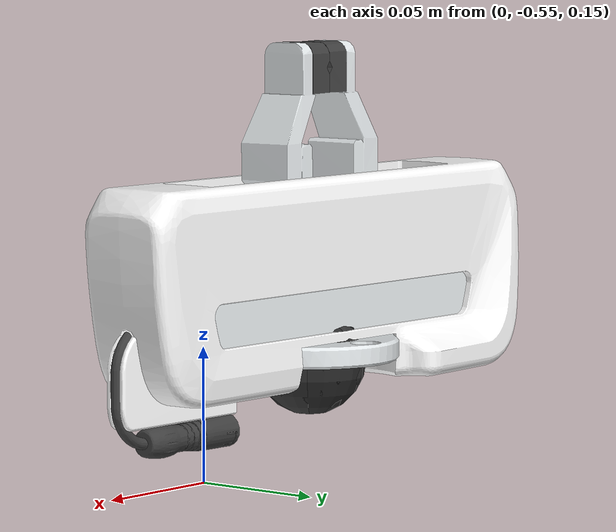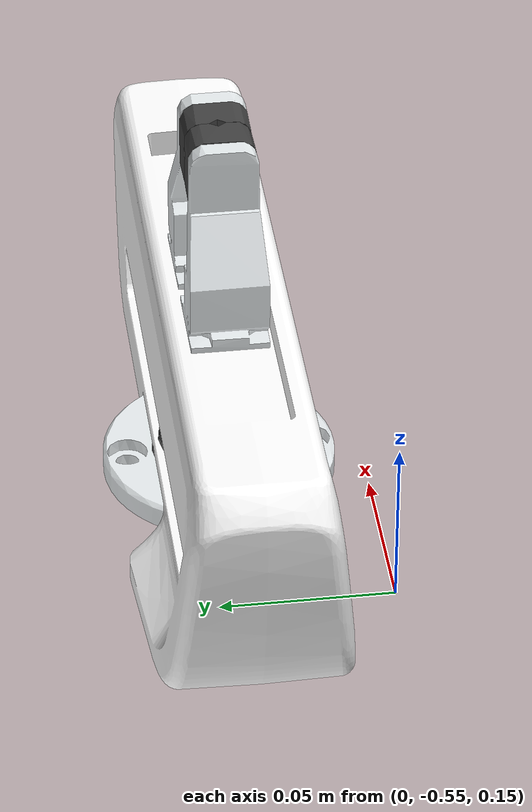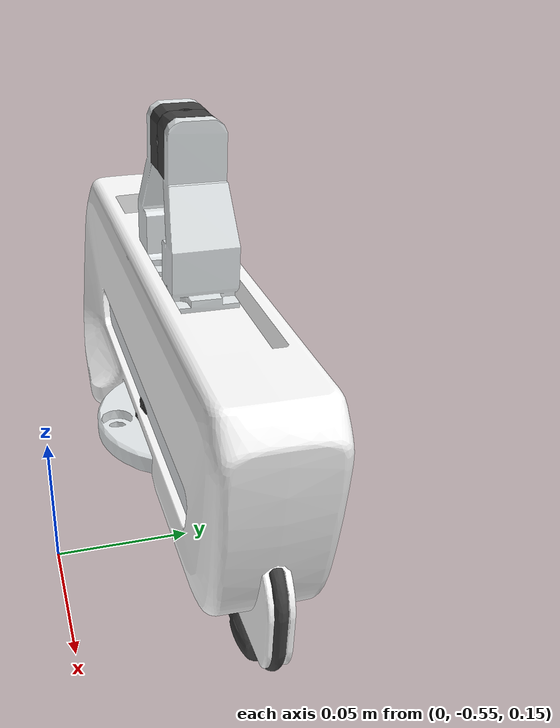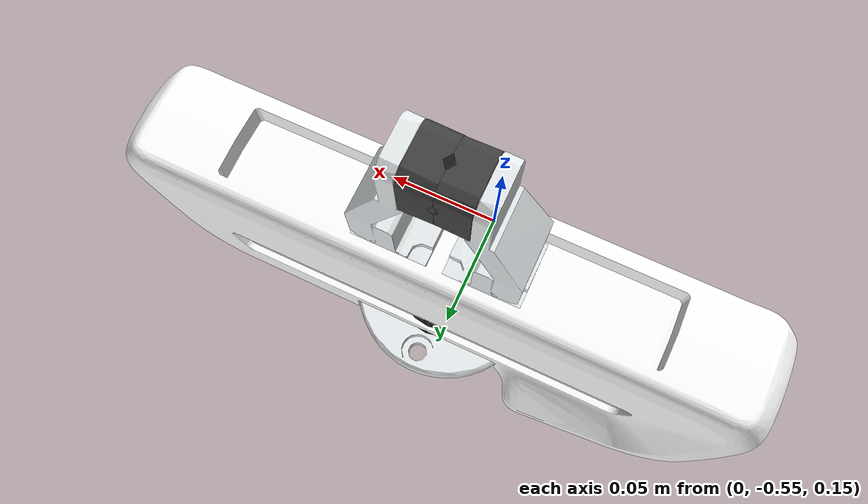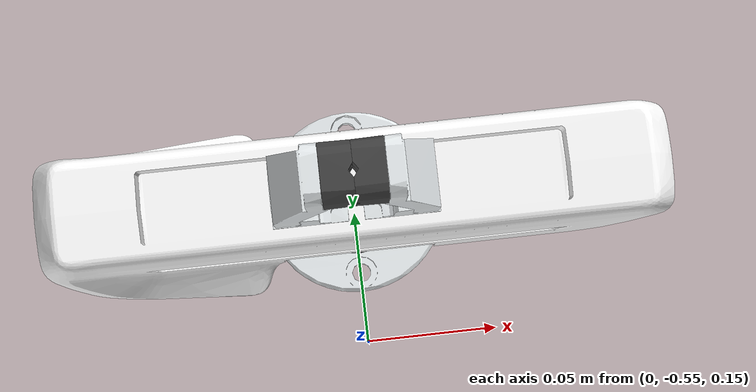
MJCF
<mujoco model="panda">
  <compiler angle="radian" autolimits="true"/>

  <option integrator="implicitfast"/>

  <default>
    <default class="panda">
      <material specular="0.5" shininess="0.25"/>
      <default class="finger">
        <joint axis="0 1 0" type="slide" range="0 0.04" armature="0.2" damping="2"/>
      </default>
      <default class="visual">
        <geom type="mesh" contype="0" conaffinity="0" group="2"/>
      </default>
      <default class="collision">
        <geom type="mesh" group="3" condim="6" friction="1 0.02 0.0005" solimp="0.95 0.99 0.001 0.5 2" solref=".005 1"/>
        <default class="fingertip_pad_collision_1">
          <geom type="box" size="0.0085 0.004 0.0085" pos="0 0.0055 0.0445"/>
        </default>
        <default class="fingertip_pad_collision_2">
          <geom type="box" size="0.003 0.002 0.003" pos="0.0055 0.002 0.05"/>
        </default>
        <default class="fingertip_pad_collision_3">
          <geom type="box" size="0.003 0.002 0.003" pos="-0.0055 0.002 0.05"/>
        </default>
        <default class="fingertip_pad_collision_4">
          <geom type="box" size="0.003 0.002 0.0035" pos="0.0055 0.002 0.0395"/>
        </default>
        <default class="fingertip_pad_collision_5">
          <geom type="box" size="0.003 0.002 0.0035" pos="-0.0055 0.002 0.0395"/>
        </default>
      </default>
    </default>
  </default>

  <asset>
    <material class="panda" name="white" rgba="1 1 1 1"/>
    <material class="panda" name="off_white" rgba="0.901961 0.921569 0.929412 1"/>
    <material class="panda" name="panda_black" rgba="0.25 0.25 0.25 1"/>
    <material class="panda" name="green" rgba="0 1 0 1"/>
    <material class="panda" name="light_blue" rgba="0.039216 0.541176 0.780392 1"/>

    <!-- Collision meshes -->
    <mesh name="hand_c" file="assets/hand.stl"/>

    <!-- Visual meshes -->
    <mesh file="assets/hand_0.obj"/>
    <mesh file="assets/hand_1.obj"/>
    <mesh file="assets/hand_2.obj"/>
    <mesh file="assets/hand_3.obj"/>
    <mesh file="assets/hand_4.obj"/>
    <mesh file="assets/finger_0.obj"/>
    <mesh file="assets/finger_1.obj"/>
  </asset>

  <worldbody>

    <body name="floating_1" mocap="true" pos="0 -0.5 0.2" euler="0 0 0">
      <geom name="floating_1" type="sphere" group="1" size="0.02" rgba="0.1 0.1 0.1 0.2" class="visual"/>
      <site name="mocap" pos="0 0 0" euler="0 0 0" size="0.01" rgba="0.1 0.1 0.1 0.2"/>
    </body>

    <body name="floating_2" pos="0 -0.5 0.2" euler="0 0 1.570795">
      <geom name="floating_2" type="sphere" group="1" size="0.02" rgba="0.2 0.2 0.2 1" class="visual"/>
      <freejoint name="floating_2"/>

      <body name="hand" pos="0 0 0" euler="0 0 0">
        <inertial mass="0.73" pos="-0.01 0 0.03" diaginertia="0.001 0.0025 0.0017"/>
        <geom mesh="hand_0" material="off_white" class="visual"/>
        <geom mesh="hand_1" material="panda_black" class="visual"/>
        <geom mesh="hand_2" material="panda_black" class="visual"/>
        <geom mesh="hand_3" material="white" class="visual"/>
        <geom mesh="hand_4" material="off_white" class="visual"/>
        <geom mesh="hand_c" class="collision"/>
        <body name="left_finger" pos="0 0 0.0584">
          <inertial mass="0.015" pos="0 0 0" diaginertia="2.375e-6 2.375e-6 7.5e-7"/>
          <joint name="finger_joint1" class="finger"/>
          <geom mesh="finger_0" material="off_white" class="visual"/>
          <geom mesh="finger_1" material="panda_black" class="visual"/>
          <geom mesh="finger_0" class="collision"/>
          <geom class="fingertip_pad_collision_1"/>
          <geom class="fingertip_pad_collision_2"/>
          <geom class="fingertip_pad_collision_3"/>
          <geom class="fingertip_pad_collision_4"/>
          <geom class="fingertip_pad_collision_5"/>
        </body>
        <body name="right_finger" pos="0 0 0.0584" quat="0 0 0 1">
          <inertial mass="0.015" pos="0 0 0" diaginertia="2.375e-6 2.375e-6 7.5e-7"/>
          <joint name="finger_joint2" class="finger"/>
          <geom mesh="finger_0" material="off_white" class="visual"/>
          <geom mesh="finger_1" material="panda_black" class="visual"/>
          <geom mesh="finger_0" class="collision"/>
          <geom class="fingertip_pad_collision_1"/>
          <geom class="fingertip_pad_collision_2"/>
          <geom class="fingertip_pad_collision_3"/>
          <geom class="fingertip_pad_collision_4"/>
          <geom class="fingertip_pad_collision_5"/>
        </body>
      </body>
    </body>
  </worldbody>

  <tendon>
    <fixed name="split">
      <joint joint="finger_joint1" coef="0.5"/>
      <joint joint="finger_joint2" coef="0.5"/>
    </fixed>
  </tendon>

  <equality>
    <joint joint1="finger_joint1" joint2="finger_joint2" solimp="0.95 0.99 0.001 0.5 2" solref="0.005 1"/>
    <weld body1="floating_1" body2="floating_2" solimp="0.95 0.99 0.001 0.5 2"  solref="0.02 1"/>
  </equality>

  <!-- in current configuration, actuator length: length = tendon_length * gear[0] -->
  <!-- in current configuration, actuator force: scalar_force = gainprm[0]*ctrl + biasprm[0] + biasprm[1]*length + biasprm[2]*velocity -->
  <!-- so, scalar_force = 0.0157*(0, 255) - 100*(finger_joint) - 10*(finger_vel) -->
  <!-- rearranging, scalar_force = 100*(finger_joint_des - finger_joint) - 10*finger_vel, finger_joint_des = (0.0157/100)*ctrl -->
  <!-- to increase overall force, need to scale gainprm[0] and biasprm[1] by the same amount -->
  <!-- default gainprm[0] was 0.01568627451 -->
  <actuator>
    <general name="panda_actuator"
      tendon="split"
      gear = "1 0 0 0 0 0"
      ctrlrange="0 255"
      gaintype="fixed" gainprm="0.06274509804 0 0"
      biastype="affine" biasprm="0 -400 -40"
      forcerange="-100 100" />
  </actuator>

  <keyframe>
    <key name="home" qpos="0 -0.5 0.2 0 0 0 1 0.04 0.04" ctrl="255" mpos="0 -0.5 0.2" mquat="0 0 0 1"/>
  </keyframe>

</mujoco>
